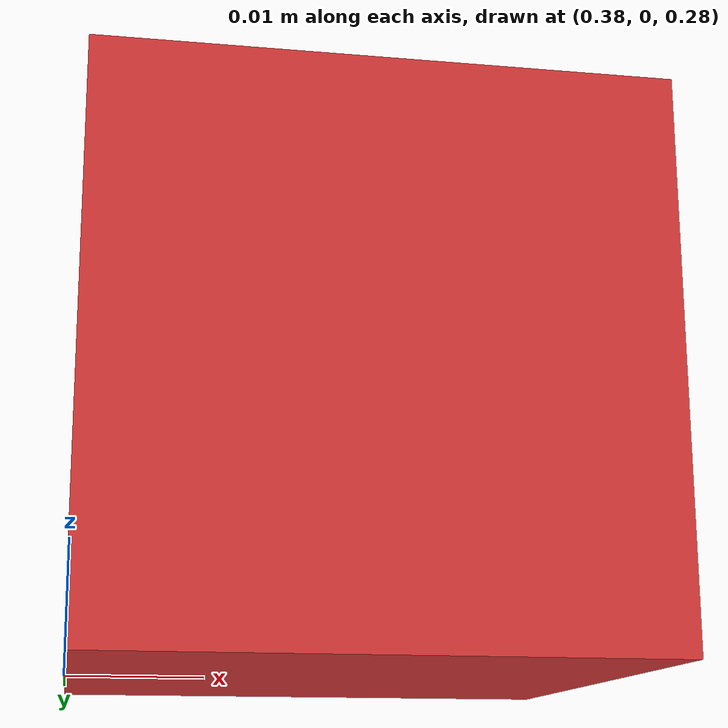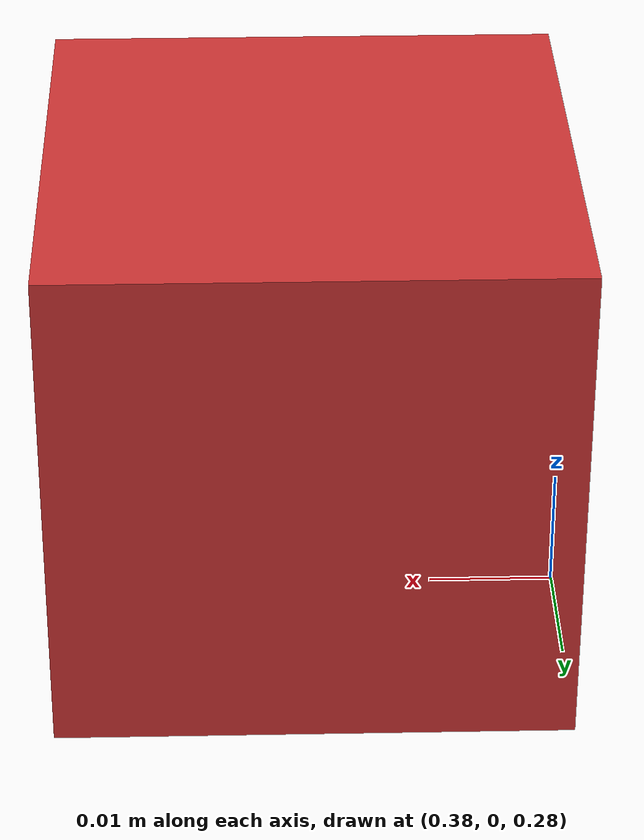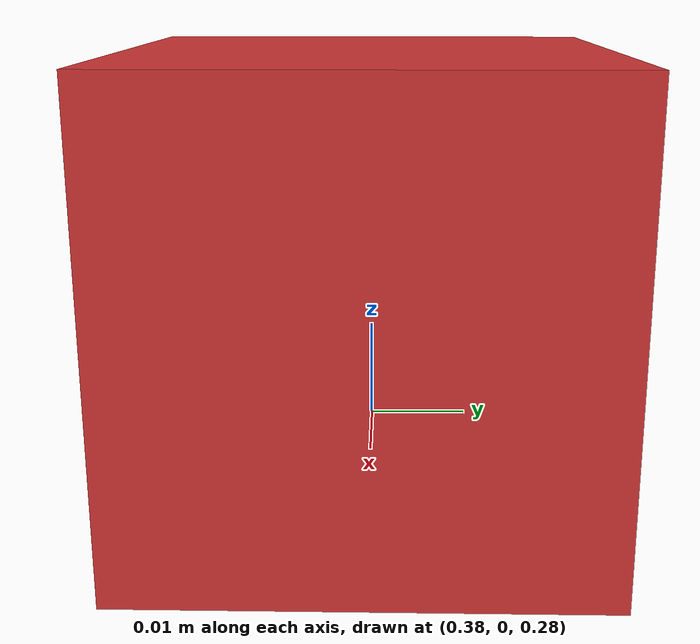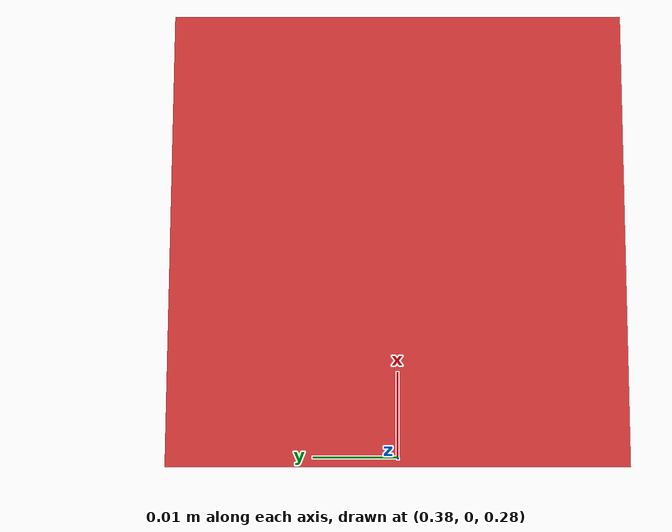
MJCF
<?xml version="1.0"?>
<mujoco model="cube">
  <worldbody>
    <body name="cube" pos="0.4 0 0.3">
      <freejoint name="cube_joint"/>
      <geom type="box" name="cube_geom" size="0.02 0.02 0.02" mass="0.05" rgba="0.8 0.2 0.2 1.0" condim="3" friction="1 0.03 0.003" contype="1" conaffinity="1" solref="0.01 1"/>
      <!-- Object site for observations (manipulation point) -->
      <site name="object_site" pos="0 0 0" size="0.01" rgba="1 0 0 1"/>
    </body>
  </worldbody>
</mujoco>
